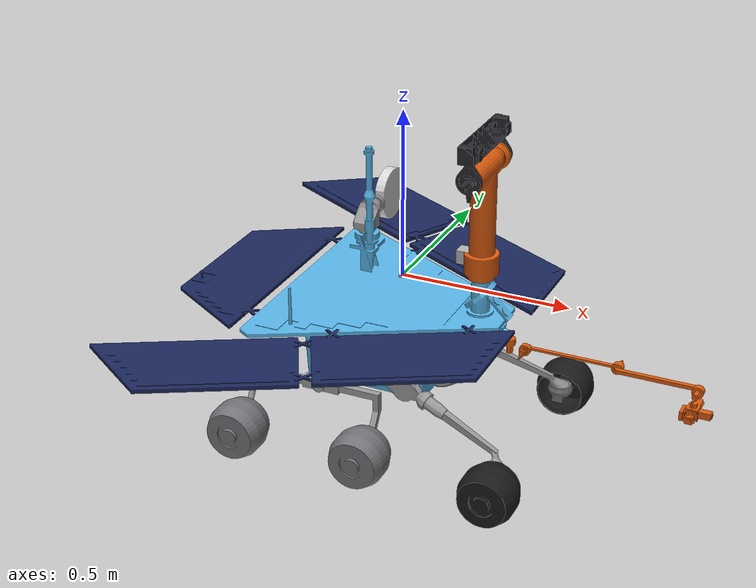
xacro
<robot name="mars_opportunity_rover">

  <material name="chassis_grey">
    <color rgba="0.55 0.55 0.58 1.0"/>
  </material>
  <material name="wheel_black">
    <color rgba="0.08 0.08 0.08 1.0"/>
  </material>
  <material name="arm_orange">
    <color rgba="0.85 0.35 0.05 1.0"/>
  </material>
  <material name="mast_silver">
    <color rgba="0.75 0.75 0.78 1.0"/>
  </material>
  <material name="sensor_dark">
    <color rgba="0.15 0.15 0.17 1.0"/>
  </material>
  <material name="lens_glass">
    <color rgba="0.1 0.15 0.2 0.6"/>
  </material>
  <material name="solar_panel_blue">
    <color rgba="0.1 0.15 0.35 1.0"/>
  </material>
  <material name="antenna_hg_white">
    <color rgba="0.85 0.85 0.85 1.0"/>
  </material>

  <!-- ===================== MATERIALS ===================== -->
  <!-- Original 3 -->
  <material name="grey"><color rgba="0.6 0.6 0.6 1.0"/></material>
  <material name="black"><color rgba="0.1 0.1 0.1 1.0"/></material>
  <material name="blue"><color rgba="0.1 0.1 0.8 1.0"/></material>

  <material name="arm_material"><color rgba="0.85 0.35 0.05 1.0"/></material>
  <material name="head_top_material"><color rgba="0.15 0.15 0.17 1.0"/></material>
  <material name="group_left_chassis_material"><color rgba="0.6 0.6 0.6 1.0"/></material>
  <material name="group_left_front_steering_material"><color rgba="0.45 0.45 0.47 1.0"/></material>
  <material name="group_left_wheel_material"><color rgba="0.1 0.1 0.1 1.0"/></material>
  <material name="left_bogie_material"><color rgba="0.6 0.6 0.6 1.0"/></material>
  <material name="group_left_middle_chariot_center_material"><color rgba="0.45 0.45 0.47 1.0"/></material>
  <material name="group_right_chassis_material"><color rgba="0.6 0.6 0.6 1.0"/></material>
  <material name="group_right_front_steering_material"><color rgba="0.45 0.45 0.47 1.0"/></material>
  <material name="group_right_wheel_material"><color rgba="0.1 0.1 0.1 1.0"/></material>
  <material name="right_bogie_material"><color rgba="0.6 0.6 0.6 1.0"/></material>
  <material name="group_right_middle_chariot_center_material"><color rgba="0.45 0.45 0.47 1.0"/></material>
  <material name="solar_panel_material"><color rgba="0.1 0.15 0.35 1.0"/></material>
  <material name="antenna_base_material"><color rgba="0.6 0.6 0.6 1.0"/></material>
  <material name="antenna_hg_material"><color rgba="0.85 0.85 0.85 1.0"/></material>

  <!-- Base Chassis with Mesh -->
  <link name="base_link"/>

  <joint name="base_to_body_box" type="fixed">
    <parent link="base_link"/>
    <child link="body_box_link"/>
    <origin xyz="0 0 0" rpy="0 0 0"/>
  </joint>

  <link name="body_box_link">
    <visual>
      <origin xyz="0 0 0" rpy="0 0 0"/>
      <geometry>
        <mesh filename="package://rover_description/meshes/body_box.stl" scale="0.68 0.68 0.68"/>
      </geometry>
    </visual>
    <collision>
      <origin xyz="0 0 0" rpy="0 0 0"/>
      <geometry><mesh filename="package://rover_description/meshes/body_box.stl"/></geometry>
    </collision>
    <inertial>
      <!-- Bounding-box approximation (mesh's real inertia depends on
           its actual shape, unknown until the mesh is supplied) -
           see common.xacro's box_inertia macro. -->
      <origin xyz="0 0 0"/>
      <mass value="14.0"/>
    <inertia ixx="0.18106666666666668" ixy="0.0" ixz="0.0" iyy="0.47833333333333333" iyz="0.0" izz="0.5996666666666667"/>

    </inertial>
  </link>

  <!-- Head with Mesh -->

  <joint name="head_j2_joint" type="revolute">
    <parent link="body_box_link"/>
    <child link="head_j2_link"/>
    <origin xyz="0.24 0 0" rpy="0 0 0"/>
    <axis xyz="0 0 1"/>
    <limit lower="-1.0" upper="1.0" effort="10" velocity="1.0"/>
  </joint>

  <transmission name="head_j2_transmission">
    <type>transmission_interface/SimpleTransmission</type>
    <joint name="head_j2_joint">
      <hardwareInterface>hardware_interface/PositionJointInterface</hardwareInterface>
    </joint>
    <actuator name="head_j2_motor">
      <hardwareInterface>hardware_interface/PositionJointInterface</hardwareInterface>
      <mechanicalReduction>1</mechanicalReduction>
    </actuator>
  </transmission>

  <link name="head_j2_link">
    <visual>
      <origin xyz="-0.24 0 0" rpy="0 0 0"/>
      <geometry>
        <mesh filename="package://rover_description/meshes/head_j2.stl" scale="0.68 0.68 0.68"/>
      </geometry>
      <material name="arm_material"/>
    </visual>
    <collision>
      <origin xyz="0 0 0" rpy="0 0 0"/>
      <geometry><mesh filename="package://rover_description/meshes/head_j2.stl"/></geometry>
    </collision>
    <inertial>
      <mass value="0.3"/>
    <inertia ixx="0.00032" ixy="0.0" ixz="0.0" iyy="0.00032" iyz="0.0" izz="0.00032"/>

    </inertial>
  </link>

  <joint name="head_j3_joint" type="revolute">
    <parent link="head_j2_link"/>
    <child link="head_j3_link"/>
    <origin xyz="0 0 0.37" rpy="0 0 0"/>
    <axis xyz="0 1 0"/>
    <limit lower="-1.0" upper="1.0" effort="4" velocity="1.0"/>
  </joint>

  <transmission name="head_j3_transmission">
    <type>transmission_interface/SimpleTransmission</type>
    <joint name="head_j3_joint">
      <hardwareInterface>hardware_interface/PositionJointInterface</hardwareInterface>
    </joint>
    <actuator name="head_j3_motor">
      <hardwareInterface>hardware_interface/PositionJointInterface</hardwareInterface>
      <mechanicalReduction>1</mechanicalReduction>
    </actuator>
  </transmission>

  <link name="head_j3_link">
    <visual>
      <origin xyz="-0.24 0 -0.37" rpy="0 0 0"/>
      <geometry>
        <mesh filename="package://rover_description/meshes/head_j3.stl" scale="0.68 0.68 0.68"/>
      </geometry>
      <material name="head_top_material"/>
    </visual>
    <collision>
      <origin xyz="0 0 0" rpy="0 0 0"/>
      <geometry><mesh filename="package://rover_description/meshes/head_j3.stl"/></geometry>
    </collision>
    <inertial>
      <mass value="0.2"/>
    <inertia ixx="0.00012" ixy="0.0" ixz="0.0" iyy="0.00012" iyz="0.0" izz="0.00012"/>

    </inertial>
  </link>

  <!-- Group Differential Steering Wheels Left with Mesh -->

  <joint name="left_differential_joint" type="revolute">
    <parent link="body_box_link"/>
    <child link="left_differential_link"/>
    <origin xyz="0.09 0 -0.265" rpy="0 0 0"/>
    <axis xyz="0 1 0"/>
    <limit lower="-0.2" upper="0.2" effort="10" velocity="1.0"/>
  </joint>

  <link name="left_differential_link">
    <visual>
      <origin xyz="-0.09 0 0.265" rpy="0 0 0"/>
      <geometry>
        <mesh filename="package://rover_description/meshes/left_differential.stl" scale="0.68 0.68 0.68"/>
      </geometry>
      <material name="group_left_chassis_material"/>
    </visual>
    <collision>
      <origin xyz="0 0 0" rpy="0 0 0"/>
      <geometry><mesh filename="package://rover_description/meshes/left_differential.stl"/></geometry>
    </collision>
    <inertial>
      <mass value="0.5"/>
    <inertia ixx="0.0008333333333333335" ixy="0.0" ixz="0.0" iyy="0.0008333333333333335" iyz="0.0" izz="0.0008333333333333335"/>

    </inertial>
  </link>

  <joint name="front_left_steering_joint" type="revolute">
    <parent link="left_differential_link"/>
    <child link="front_left_steering_link"/>
    <origin xyz="0.315 0.26 -0.14" rpy="0 0 0"/>
    <axis xyz="0 0 1"/>
    <limit lower="-0.3" upper="0.3" effort="10" velocity="1.0"/>
  </joint>

  <transmission name="front_left_steering_transmission">
    <type>transmission_interface/SimpleTransmission</type>
    <joint name="front_left_steering_joint">
      <hardwareInterface>hardware_interface/PositionJointInterface</hardwareInterface>
    </joint>
    <actuator name="front_left_steering_motor">
      <hardwareInterface>hardware_interface/PositionJointInterface</hardwareInterface>
      <mechanicalReduction>1</mechanicalReduction>
    </actuator>
  </transmission>

  <link name="front_left_steering_link">
    <visual>
      <origin xyz="-0.402 -0.258 0.404" rpy="0 0 0"/>
      <geometry>
        <mesh filename="package://rover_description/meshes/front_left_steering.stl" scale="0.68 0.68 0.68"/>
      </geometry>
      <material name="group_left_front_steering_material"/>
    </visual>
    <collision>
      <origin xyz="0 0 0" rpy="0 0 0"/>
      <geometry><mesh filename="package://rover_description/meshes/front_left_steering.stl"/></geometry>
    </collision>
    <inertial>
      <mass value="0.3"/>
    <inertia ixx="0.00018" ixy="0.0" ixz="0.0" iyy="0.00018" iyz="0.0" izz="0.00018"/>

    </inertial>
  </link>

  <joint name="front_left_wheel_joint" type="continuous">
    <parent link="front_left_steering_link"/>
    <child link="front_left_wheel_link"/>
    <origin xyz="0 0.045 -0.033" rpy="0 0 0"/>
    <axis xyz="0 1 0"/>
  </joint>

  <transmission name="front_left_wheel_transmission">
    <type>transmission_interface/SimpleTransmission</type>
    <joint name="front_left_wheel_joint">
      <hardwareInterface>hardware_interface/PositionJointInterface</hardwareInterface>
    </joint>
    <actuator name="front_left_wheel_motor">
      <hardwareInterface>hardware_interface/PositionJointInterface</hardwareInterface>
      <mechanicalReduction>1</mechanicalReduction>
    </actuator>
  </transmission>

  <link name="front_left_wheel_link">
    <visual>
      <origin xyz="-0.409 -0.3 0.433" rpy="0 0 0"/>
      <geometry>
        <mesh filename="package://rover_description/meshes/front_left_wheel.stl" scale="0.68 0.68 0.68"/>
      </geometry>
      <material name="group_left_wheel_material"/>
    </visual>
    <collision>
      <origin xyz="0 0 0" rpy="0 0 0"/>
      <geometry><mesh filename="package://rover_description/meshes/front_left_wheel.stl"/></geometry>
    </collision>
    <inertial>
      <mass value="1.1"/>
    <inertia ixx="0.0025575000000000003" ixy="0.0" ixz="0.0" iyy="0.0025575000000000003" iyz="0.0" izz="0.004455"/>

    </inertial>
  </link>

  <joint name="left_bogie_joint" type="revolute">
    <parent link="left_differential_link"/>
    <child link="left_bogie_link"/>
    <origin xyz="-0.265 0.195 -0.041" rpy="0 0 0"/>
    <axis xyz="0 1 0"/>
    <limit lower="-0.3" upper="0.3" effort="10" velocity="1.0"/>
  </joint>

  <transmission name="left_bogie_transmission">
    <type>transmission_interface/SimpleTransmission</type>
    <joint name="left_bogie_joint">
      <hardwareInterface>hardware_interface/PositionJointInterface</hardwareInterface>
    </joint>
    <actuator name="left_bogie_motor">
      <hardwareInterface>hardware_interface/PositionJointInterface</hardwareInterface>
      <mechanicalReduction>1</mechanicalReduction>
    </actuator>
  </transmission>

  <link name="left_bogie_link">
    <visual>
      <origin xyz="0.175 -0.190 0.308" rpy="0 0 0"/>
      <geometry>
        <mesh filename="package://rover_description/meshes/left_bogie.stl" scale="0.68 0.68 0.68"/>
      </geometry>
      <material name="left_bogie_material"/>
    </visual>
    <collision>
      <origin xyz="0 0 0" rpy="0 0 0"/>
      <geometry><mesh filename="package://rover_description/meshes/left_bogie.stl"/></geometry>
    </collision>
    <inertial>
      <mass value="0.6"/>
    <inertia ixx="0.00064" ixy="0.0" ixz="0.0" iyy="0.0014449999999999999" iyz="0.0" izz="0.0014449999999999999"/>

    </inertial>
  </link>

  <joint name="middle_left_wheel_joint" type="continuous">
    <parent link="left_bogie_link"/>
    <child link="middle_left_wheel_link"/>
    <origin xyz="0.178 0.06 -0.13" rpy="0 0 0"/>
    <axis xyz="0 1 0"/>
  </joint>

  <transmission name="middle_left_wheel_transmission">
    <type>transmission_interface/SimpleTransmission</type>
    <joint name="middle_left_wheel_joint">
      <hardwareInterface>hardware_interface/PositionJointInterface</hardwareInterface>
    </joint>
    <actuator name="middle_left_wheel_motor">
      <hardwareInterface>hardware_interface/PositionJointInterface</hardwareInterface>
      <mechanicalReduction>1</mechanicalReduction>
    </actuator>
  </transmission>

  <link name="middle_left_wheel_link">
    <visual>
      <origin xyz="0 -0.22 0.435" rpy="0 0 0"/>
      <geometry>
        <mesh filename="package://rover_description/meshes/middle_left_wheel.stl" scale="0.68 0.68 0.68"/>
      </geometry>
      <material name="group_left_middle_chariot_center_material"/>
    </visual>
    <collision>
      <origin xyz="0 0 0" rpy="0 0 0"/>
      <geometry><mesh filename="package://rover_description/meshes/middle_left_wheel.stl"/></geometry>
    </collision>
    <inertial>
      <mass value="1.1"/>
    <inertia ixx="0.0025575000000000003" ixy="0.0" ixz="0.0" iyy="0.0025575000000000003" iyz="0.0" izz="0.004455"/>

    </inertial>
  </link>

  <joint name="rear_left_steering_joint" type="revolute">
    <parent link="left_bogie_link"/>
    <child link="rear_left_steering_link"/>
    <origin xyz="-0.203 0.09 -0.1" rpy="0 0 0"/>
    <axis xyz="0 0 1"/>
    <limit lower="-0.3" upper="0.3" effort="10" velocity="1.0"/>
  </joint>

  <transmission name="rear_left_steering_transmission">
    <type>transmission_interface/SimpleTransmission</type>
    <joint name="rear_left_steering_joint">
      <hardwareInterface>hardware_interface/PositionJointInterface</hardwareInterface>
    </joint>
    <actuator name="rear_left_steering_motor">
      <hardwareInterface>hardware_interface/PositionJointInterface</hardwareInterface>
      <mechanicalReduction>1</mechanicalReduction>
    </actuator>
  </transmission>

  <link name="rear_left_steering_link">
    <visual>
      <origin xyz="0.38 -0.28 0.408" rpy="0 0 0"/>
      <geometry>
        <mesh filename="package://rover_description/meshes/rear_left_steering.stl" scale="0.68 0.68 0.68"/>
      </geometry>
      <material name="group_left_middle_chariot_center_material"/>
    </visual>
    <collision>
      <origin xyz="0 0 0" rpy="0 0 0"/>
      <geometry><mesh filename="package://rover_description/meshes/rear_left_steering.stl"/></geometry>
    </collision>
    <inertial>
      <mass value="0.3"/>
    <inertia ixx="0.00018" ixy="0.0" ixz="0.0" iyy="0.00018" iyz="0.0" izz="0.00018"/>

    </inertial>
  </link>

  <joint name="rear_left_wheel_joint" type="continuous">
    <parent link="rear_left_steering_link"/>
    <child link="rear_left_wheel_link"/>
    <origin xyz="0 0.048 -0.025" rpy="0 0 0"/>
    <axis xyz="0 1 0"/>
  </joint>

  <transmission name="rear_left_wheel_transmission">
    <type>transmission_interface/SimpleTransmission</type>
    <joint name="rear_left_wheel_joint">
      <hardwareInterface>hardware_interface/PositionJointInterface</hardwareInterface>
    </joint>
    <actuator name="rear_left_wheel_motor">
      <hardwareInterface>hardware_interface/PositionJointInterface</hardwareInterface>
      <mechanicalReduction>1</mechanicalReduction>
    </actuator>
  </transmission>

  <link name="rear_left_wheel_link">
    <visual>
      <origin xyz="0.38 -0.32 0.44" rpy="0 0 0"/>
      <geometry>
        <mesh filename="package://rover_description/meshes/rear_left_wheel.stl" scale="0.68 0.68 0.68"/>
      </geometry>
      <material name="group_left_middle_chariot_center_material"/>
    </visual>
    <collision>
      <origin xyz="0 0 0" rpy="0 0 0"/>
      <geometry><mesh filename="package://rover_description/meshes/rear_left_wheel.stl"/></geometry>
    </collision>
    <inertial>
      <mass value="1.1"/>
    <inertia ixx="0.0025575000000000003" ixy="0.0" ixz="0.0" iyy="0.0025575000000000003" iyz="0.0" izz="0.004455"/>

    </inertial>
  </link>

  <!-- Group Differential Steering Wheels Right with Mesh -->

  <joint name="right_differential_joint" type="revolute">
    <parent link="body_box_link"/>
    <child link="right_differential_link"/>
    <origin xyz="0.09 0 -0.265" rpy="0 0 0"/>
    <axis xyz="0 1 0"/>
    <limit lower="-0.2" upper="0.2" effort="10" velocity="1.0"/>
  </joint>

  <transmission name="right_differential_transmission">
    <type>transmission_interface/SimpleTransmission</type>
    <joint name="right_differential_joint">
      <hardwareInterface>hardware_interface/PositionJointInterface</hardwareInterface>
    </joint>
    <actuator name="right_differential_motor">
      <hardwareInterface>hardware_interface/PositionJointInterface</hardwareInterface>
      <mechanicalReduction>1</mechanicalReduction>
    </actuator>
  </transmission>

  <link name="right_differential_link">
    <visual>
      <origin xyz="-0.09 0 0.265" rpy="0 0 0"/>
      <geometry>
        <mesh filename="package://rover_description/meshes/right_differential.stl" scale="0.68 0.68 0.68"/>
      </geometry>
      <material name="group_right_chassis_material"/>
    </visual>
    <collision>
      <origin xyz="0 0 0" rpy="0 0 0"/>
      <geometry><mesh filename="package://rover_description/meshes/right_differential.stl"/></geometry>
    </collision>
    <inertial>
      <mass value="0.5"/>
    <inertia ixx="0.0008333333333333335" ixy="0.0" ixz="0.0" iyy="0.0008333333333333335" iyz="0.0" izz="0.0008333333333333335"/>

    </inertial>
  </link>

  <joint name="front_right_steering_joint" type="revolute">
    <parent link="right_differential_link"/>
    <child link="front_right_steering_link"/>
    <origin xyz="0.315 -0.26 -0.14" rpy="0 0 0"/>
    <axis xyz="0 0 1"/>
    <limit lower="-0.3" upper="0.3" effort="10" velocity="1.0"/>
  </joint>

  <transmission name="front_right_steering_transmission">
    <type>transmission_interface/SimpleTransmission</type>
    <joint name="front_right_steering_joint">
      <hardwareInterface>hardware_interface/PositionJointInterface</hardwareInterface>
    </joint>
    <actuator name="front_right_steering_motor">
      <hardwareInterface>hardware_interface/PositionJointInterface</hardwareInterface>
      <mechanicalReduction>1</mechanicalReduction>
    </actuator>
  </transmission>

  <link name="front_right_steering_link">
    <visual>
      <origin xyz="-0.402 0.258 0.404" rpy="0 0 0"/>
      <geometry>
        <mesh filename="package://rover_description/meshes/front_right_steering.stl" scale="0.68 0.68 0.68"/>
      </geometry>
      <material name="group_right_front_steering_material"/>
    </visual>
    <collision>
      <origin xyz="0 0 0" rpy="0 0 0"/>
      <geometry><mesh filename="package://rover_description/meshes/front_right_steering.stl"/></geometry>
    </collision>
    <inertial>
      <mass value="0.3"/>
    <inertia ixx="0.00018" ixy="0.0" ixz="0.0" iyy="0.00018" iyz="0.0" izz="0.00018"/>

    </inertial>
  </link>

  <joint name="front_right_wheel_joint" type="continuous">
    <parent link="front_right_steering_link"/>
    <child link="front_right_wheel_link"/>
    <origin xyz="0 -0.045 -0.033" rpy="0 0 0"/>
    <axis xyz="0 1 0"/>
  </joint>

  <transmission name="front_right_wheel_transmission">
    <type>transmission_interface/SimpleTransmission</type>
    <joint name="front_right_wheel_joint">
      <hardwareInterface>hardware_interface/PositionJointInterface</hardwareInterface>
    </joint>
    <actuator name="front_right_wheel_motor">
      <hardwareInterface>hardware_interface/PositionJointInterface</hardwareInterface>
      <mechanicalReduction>1</mechanicalReduction>
    </actuator>
  </transmission>

  <link name="front_right_wheel_link">
    <visual>
      <origin xyz="-0.409 0.3 0.433" rpy="0 0 0"/>
      <geometry>
        <mesh filename="package://rover_description/meshes/front_right_wheel.stl" scale="0.68 0.68 0.68"/>
      </geometry>
      <material name="group_right_wheel_material"/>
    </visual>
    <collision>
      <origin xyz="0 0 0" rpy="0 0 0"/>
      <geometry><mesh filename="package://rover_description/meshes/front_right_wheel.stl"/></geometry>
    </collision>
    <inertial>
      <mass value="1.1"/>
    <inertia ixx="0.0025575000000000003" ixy="0.0" ixz="0.0" iyy="0.0025575000000000003" iyz="0.0" izz="0.004455"/>

    </inertial>
  </link>

  <joint name="right_bogie_joint" type="revolute">
    <parent link="right_differential_link"/>
    <child link="right_bogie_link"/>
    <origin xyz="-0.265 -0.195 -0.041" rpy="0 0 0"/>
    <axis xyz="0 1 0"/>
    <limit lower="-0.3" upper="0.3" effort="10" velocity="1.0"/>
  </joint>

  <transmission name="right_bogie_transmission">
    <type>transmission_interface/SimpleTransmission</type>
    <joint name="right_bogie_joint">
      <hardwareInterface>hardware_interface/PositionJointInterface</hardwareInterface>
    </joint>
    <actuator name="right_bogie_motor">
      <hardwareInterface>hardware_interface/PositionJointInterface</hardwareInterface>
      <mechanicalReduction>1</mechanicalReduction>
    </actuator>
  </transmission>

  <link name="right_bogie_link">
    <visual>
      <origin xyz="0.175 0.190 0.308" rpy="0 0 0"/>
      <geometry>
        <mesh filename="package://rover_description/meshes/right_bogie.stl" scale="0.68 0.68 0.68"/>
      </geometry>
      <material name="right_bogie_material"/>
    </visual>
    <collision>
      <origin xyz="0 0 0" rpy="0 0 0"/>
      <geometry><mesh filename="package://rover_description/meshes/right_bogie.stl"/></geometry>
    </collision>
    <inertial>
      <mass value="0.6"/>
    <inertia ixx="0.00064" ixy="0.0" ixz="0.0" iyy="0.0014449999999999999" iyz="0.0" izz="0.0014449999999999999"/>

    </inertial>
  </link>

  <joint name="middle_right_wheel_joint" type="continuous">
    <parent link="right_bogie_link"/>
    <child link="middle_right_wheel_link"/>
    <origin xyz="0.178 -0.06 -0.13" rpy="0 0 0"/>
    <axis xyz="0 1 0"/>
  </joint>

  <transmission name="middle_right_wheel_transmission">
    <type>transmission_interface/SimpleTransmission</type>
    <joint name="middle_right_wheel_joint">
      <hardwareInterface>hardware_interface/PositionJointInterface</hardwareInterface>
    </joint>
    <actuator name="middle_right_wheel_motor">
      <hardwareInterface>hardware_interface/PositionJointInterface</hardwareInterface>
      <mechanicalReduction>1</mechanicalReduction>
    </actuator>
  </transmission>

  <link name="middle_right_wheel_link">
    <visual>
      <origin xyz="0 0.22 0.435" rpy="0 0 0"/>
      <geometry>
        <mesh filename="package://rover_description/meshes/middle_right_wheel.stl" scale="0.68 0.68 0.68"/>
      </geometry>
      <material name="group_right_middle_chariot_center_material"/>
    </visual>
    <collision>
      <origin xyz="0 0 0" rpy="0 0 0"/>
      <geometry><mesh filename="package://rover_description/meshes/middle_right_wheel.stl"/></geometry>
    </collision>
    <inertial>
      <mass value="1.1"/>
    <inertia ixx="0.0025575000000000003" ixy="0.0" ixz="0.0" iyy="0.0025575000000000003" iyz="0.0" izz="0.004455"/>

    </inertial>
  </link>

  <joint name="rear_right_steering_joint" type="revolute">
    <parent link="right_bogie_link"/>
    <child link="rear_right_steering_link"/>
    <origin xyz="-0.203 -0.09 -0.1" rpy="0 0 0"/>
    <axis xyz="0 0 1"/>
    <limit lower="-0.3" upper="0.3" effort="10" velocity="1.0"/>
  </joint>

  <transmission name="rear_right_steering_transmission">
    <type>transmission_interface/SimpleTransmission</type>
    <joint name="rear_right_steering_joint">
      <hardwareInterface>hardware_interface/PositionJointInterface</hardwareInterface>
    </joint>
    <actuator name="rear_right_steering_motor">
      <hardwareInterface>hardware_interface/PositionJointInterface</hardwareInterface>
      <mechanicalReduction>1</mechanicalReduction>
    </actuator>
  </transmission>

  <link name="rear_right_steering_link">
    <visual>
      <origin xyz="0.38 0.28 0.408" rpy="0 0 0"/>
      <geometry>
        <mesh filename="package://rover_description/meshes/rear_right_steering.stl" scale="0.68 0.68 0.68"/>
      </geometry>
      <material name="group_right_middle_chariot_center_material"/>
    </visual>
    <collision>
      <origin xyz="0 0 0" rpy="0 0 0"/>
      <geometry><mesh filename="package://rover_description/meshes/rear_right_steering.stl"/></geometry>
    </collision>
    <inertial>
      <mass value="0.3"/>
    <inertia ixx="0.00018" ixy="0.0" ixz="0.0" iyy="0.00018" iyz="0.0" izz="0.00018"/>

    </inertial>
  </link>

  <joint name="rear_right_wheel_joint" type="continuous">
    <parent link="rear_right_steering_link"/>
    <child link="rear_right_wheel_link"/>
    <origin xyz="0 -0.048 -0.025" rpy="0 0 0"/>
    <axis xyz="0 1 0"/>
  </joint>

  <transmission name="rear_right_wheel_transmission">
    <type>transmission_interface/SimpleTransmission</type>
    <joint name="rear_right_wheel_joint">
      <hardwareInterface>hardware_interface/PositionJointInterface</hardwareInterface>
    </joint>
    <actuator name="rear_right_wheel_motor">
      <hardwareInterface>hardware_interface/PositionJointInterface</hardwareInterface>
      <mechanicalReduction>1</mechanicalReduction>
    </actuator>
  </transmission>

  <link name="rear_right_wheel_link">
    <visual>
      <origin xyz="0.38 0.32 0.44" rpy="0 0 0"/>
      <geometry>
        <mesh filename="package://rover_description/meshes/rear_right_wheel.stl" scale="0.68 0.68 0.68"/>
      </geometry>
      <material name="group_right_middle_chariot_center_material"/>
    </visual>
    <collision>
      <origin xyz="0 0 0" rpy="0 0 0"/>
      <geometry><mesh filename="package://rover_description/meshes/rear_right_wheel.stl"/></geometry>
    </collision>
    <inertial>
      <mass value="1.1"/>
    <inertia ixx="0.0025575000000000003" ixy="0.0" ixz="0.0" iyy="0.0025575000000000003" iyz="0.0" izz="0.004455"/>

    </inertial>
  </link>

  <!-- Arm link with Meshes -->

  <joint name="arm_j1_joint" type="revolute">
    <parent link="body_box_link"/>
    <child link="arm_j1_link"/>
    <origin xyz="0.3 0.09 -0.2" rpy="0 0 0"/>
    <axis xyz="0 0 1"/>
    <limit lower="-1.0" upper="1.0" effort="8" velocity="1.5"/>
  </joint>

  <link name="arm_j1_link">
    <visual>
      <origin xyz="-0.285 -0.095 0.2" rpy="0 0 0"/>
      <geometry>
        <mesh filename="package://rover_description/meshes/arm_j1.stl" scale="0.68 0.68 0.68"/>
      </geometry>
      <material name="arm_material"/>
    </visual>
    <collision>
      <origin xyz="0 0 0" rpy="0 0 0"/>
      <geometry><mesh filename="package://rover_description/meshes/arm_j1.stl"/></geometry>
    </collision>
    <inertial>
      <mass value="0.4"/>
    <inertia ixx="0.0004266666666666667" ixy="0.0" ixz="0.0" iyy="0.0004266666666666667" iyz="0.0" izz="0.0004266666666666667"/>

    </inertial>
  </link>

  <joint name="arm_j2_joint" type="revolute">
    <parent link="arm_j1_link"/>
    <child link="arm_j2_link"/>
    <origin xyz="0.05 0 -0.005" rpy="0 0 0"/>
    <axis xyz="0 1 0"/>
    <limit lower="-0.5" upper="1.0" effort="10" velocity="1.0"/>
  </joint>

  <link name="arm_j2_link">
    <visual>
      <origin xyz="-0.32 -0.095 0.205" rpy="0 0 0"/>
      <geometry>
        <mesh filename="package://rover_description/meshes/arm_j2.stl" scale="0.68 0.68 0.68"/>
      </geometry>
      <material name="arm_material"/>
    </visual>
    <collision>
      <origin xyz="0 0 0" rpy="0 0 0"/>
      <geometry><mesh filename="package://rover_description/meshes/arm_j2.stl"/></geometry>
    </collision>
    <inertial>
      <mass value="0.5"/>
    <inertia ixx="0.002129166666666667" ixy="0.0" ixz="0.0" iyy="0.002129166666666667" iyz="0.0" izz="0.000225"/>

    </inertial>
  </link>

  <joint name="arm_j3_joint" type="revolute">
    <parent link="arm_j2_link"/>
    <child link="arm_j3_link"/>
    <origin xyz="0.275 0 0" rpy="0 0 0"/>
    <axis xyz="0 1 0"/>
    <limit lower="-1.57" upper="1.57" effort="10" velocity="1.0"/>
  </joint>

  <link name="arm_j3_link">
    <visual>
      <origin xyz="-0.575 -0.1 0.205" rpy="0 0 0"/>
      <geometry>
        <mesh filename="package://rover_description/meshes/arm_j3.stl" scale="0.68 0.68 0.68"/>
      </geometry>
      <material name="arm_material"/>
    </visual>
    <collision>
      <origin xyz="0 0 0" rpy="0 0 0"/>
      <geometry><mesh filename="package://rover_description/meshes/arm_j3.stl"/></geometry>
    </collision>
    <inertial>
      <mass value="0.4"/>
    <inertia ixx="0.0013958333333333338" ixy="0.0" ixz="0.0" iyy="0.0013958333333333338" iyz="0.0" izz="0.00012500000000000003"/>

    </inertial>
  </link>

  <joint name="arm_j4_joint" type="revolute">
    <parent link="arm_j3_link"/>
    <child link="arm_j4_link"/>
    <origin xyz="0.235 -0.021 0" rpy="0 0 0"/>
    <axis xyz="0 1 0"/>
    <limit lower="-1.57" upper="1.57" effort="4" velocity="1.5"/>
  </joint>

  <link name="arm_j4_link">
    <visual>
      <origin xyz="-0.8 -0.08 0.205" rpy="0 0 0"/>
      <geometry>
        <mesh filename="package://rover_description/meshes/arm_j4.stl" scale="0.68 0.68 0.68"/>
      </geometry>
      <material name="arm_material"/>
    </visual>
    <collision>
      <origin xyz="0 0 0" rpy="0 0 0"/>
      <geometry><mesh filename="package://rover_description/meshes/arm_j4.stl"/></geometry>
    </collision>
    <inertial>
      <mass value="0.25"/>
    <inertia ixx="0.00019375" ixy="0.0" ixz="0.0" iyy="0.00019375" iyz="0.0" izz="0.00005"/>

    </inertial>
  </link>

  <joint name="arm_j5_joint" type="revolute">
    <parent link="arm_j4_link"/>
    <child link="arm_j5_link"/>
    <origin xyz="0 -0.06 0" rpy="0 0 0"/>
    <axis xyz="0 0 1"/>
    <limit lower="-1.57" upper="1.57" effort="3" velocity="2.0"/>
  </joint>

  <link name="arm_j5_link">
    <visual>
      <origin xyz="-0.8 0 0.205" rpy="0 0 0"/>
      <geometry>
        <mesh filename="package://rover_description/meshes/arm_j5.stl" scale="0.68 0.68 0.68"/>
      </geometry>
      <material name="arm_material"/>
    </visual>
    <collision>
      <origin xyz="0 0 0" rpy="0 0 0"/>
      <geometry><mesh filename="package://rover_description/meshes/arm_j5.stl"/></geometry>
    </collision>
    <inertial>
      <mass value="0.15"/>
    <inertia ixx="0.00007340000000000001" ixy="0.0" ixz="0.0" iyy="0.00007340000000000001" iyz="0.0" izz="0.000024299999999999994"/>

    </inertial>
  </link>

  <transmission name="arm_j1_trans">
    <type>transmission_interface/SimpleTransmission</type>
    <joint name="arm_j1_joint"/>
    <actuator name="arm_j1_motor"/>
  </transmission>

  <transmission name="arm_j2_trans">
    <type>transmission_interface/SimpleTransmission</type>
    <joint name="arm_j2_joint"/>
    <actuator name="arm_j2_motor"/>
  </transmission>

  <transmission name="arm_j3_trans">
    <type>transmission_interface/SimpleTransmission</type>
    <joint name="arm_j3_joint"/>
    <actuator name="arm_j3_motor"/>
  </transmission>

  <transmission name="arm_j4_trans">
    <type>transmission_interface/SimpleTransmission</type>
    <joint name="arm_j4_joint"/>
    <actuator name="arm_j4_motor"/>
  </transmission>

  <transmission name="arm_j5_trans">
    <type>transmission_interface/SimpleTransmission</type>
    <joint name="arm_j5_joint"/>
    <actuator name="arm_j5_motor"/>
  </transmission>

  <!-- Solar Panels (static - not deployable/steerable) -->

  <joint name="front_left_panel_joint" type="fixed">
    <parent link="body_box_link"/>
    <child link="front_left_panel_link"/>
    <origin xyz="0.12 0.20 0.08" rpy="0 0 0"/>
  </joint>

  <link name="front_left_panel_link">
    <visual>
      <origin xyz="-0.1 -0.2 -0.08" rpy="0 0 0"/>
      <geometry>
        <mesh filename="package://rover_description/meshes/front_left_panel.stl" scale="0.68 0.68 0.68"/>
      </geometry>
      <material name="solar_panel_material"/>
    </visual>
    <collision>
      <origin xyz="0 0 0" rpy="0 0 0"/>
      <geometry><mesh filename="package://rover_description/meshes/front_left_panel.stl"/></geometry>
    </collision>
    <inertial>
      <mass value="0.3"/>
    <inertia ixx="0.0004916000000000001" ixy="0.0" ixz="0.0" iyy="0.0012116" iyz="0.0" izz="0.0017000000000000001"/>

    </inertial>
  </link>

  <joint name="rear_left_panel_joint" type="fixed">
    <parent link="body_box_link"/>
    <child link="rear_left_panel_link"/>
    <origin xyz="-0.12 0.20 0.08" rpy="0 0 0"/>
  </joint>

  <link name="rear_left_panel_link">
    <visual>
      <origin xyz="0.128 -0.190 -0.0775" rpy="0 0 0"/>
      <geometry>
        <mesh filename="package://rover_description/meshes/rear_left_panel.stl" scale="0.68 0.68 0.68"/>
      </geometry>
      <material name="solar_panel_material"/>
    </visual>
    <collision>
      <origin xyz="0 0 0" rpy="0 0 0"/>
      <geometry><mesh filename="package://rover_description/meshes/rear_left_panel.stl"/></geometry>
    </collision>
    <inertial>
      <mass value="0.3"/>
    <inertia ixx="0.0004916000000000001" ixy="0.0" ixz="0.0" iyy="0.0012116" iyz="0.0" izz="0.0017000000000000001"/>

    </inertial>
  </link>

  <joint name="front_right_panel_joint" type="fixed">
    <parent link="body_box_link"/>
    <child link="front_right_panel_link"/>
    <origin xyz="0.12 -0.20 0.08" rpy="0 0 0"/>
  </joint>

  <link name="front_right_panel_link">
    <visual>
      <origin xyz="-0.1 0.2 -0.075" rpy="0 0 0"/>
      <geometry>
        <mesh filename="package://rover_description/meshes/front_right_panel.stl" scale="0.68 0.68 0.68"/>
      </geometry>
      <material name="solar_panel_material"/>
    </visual>
    <collision>
      <origin xyz="0 0 0" rpy="0 0 0"/>
      <geometry><mesh filename="package://rover_description/meshes/front_right_panel.stl"/></geometry>
    </collision>
    <inertial>
      <mass value="0.3"/>
    <inertia ixx="0.0004916000000000001" ixy="0.0" ixz="0.0" iyy="0.0012116" iyz="0.0" izz="0.0017000000000000001"/>

    </inertial>
  </link>

  <joint name="rear_right_panel_joint" type="fixed">
    <parent link="body_box_link"/>
    <child link="rear_right_panel_link"/>
    <origin xyz="-0.12 -0.20 0.08" rpy="0 0 0"/>
  </joint>

  <link name="rear_right_panel_link">
    <visual>
      <origin xyz="0.128 0.190 -0.0775" rpy="0 0 0"/>
      <geometry>
        <mesh filename="package://rover_description/meshes/rear_right_panel.stl" scale="0.68 0.68 0.68"/>
      </geometry>
      <material name="solar_panel_material"/>
    </visual>
    <collision>
      <origin xyz="0 0 0" rpy="0 0 0"/>
      <geometry><mesh filename="package://rover_description/meshes/rear_right_panel.stl"/></geometry>
    </collision>
    <inertial>
      <mass value="0.3"/>
    <inertia ixx="0.0004916000000000001" ixy="0.0" ixz="0.0" iyy="0.0012116" iyz="0.0" izz="0.0017000000000000001"/>

    </inertial>
  </link>

  <joint name="rear_middle_panel_joint" type="fixed">
    <parent link="body_box_link"/>
    <child link="rear_middle_panel_link"/>
    <origin xyz="-0.22 0 0.08" rpy="0 0 0"/>
  </joint>

  <link name="rear_middle_panel_link">
    <visual>
      <origin xyz="0.2 0 -0.08" rpy="0 0 0"/>
      <geometry>
        <mesh filename="package://rover_description/meshes/rear_middle_panel.stl" scale="0.68 0.68 0.68"/>
      </geometry>
      <material name="solar_panel_material"/>
    </visual>
    <collision>
      <origin xyz="0 0 0" rpy="0 0 0"/>
      <geometry><mesh filename="package://rover_description/meshes/rear_middle_panel.stl"/></geometry>
    </collision>
    <inertial>
      <mass value="0.15"/>
    <inertia ixx="0.00018079999999999998" ixy="0.0" ixz="0.0" iyy="0.00024580000000000007" iyz="0.0" izz="0.00042500000000000003"/>

    </inertial>
  </link>

  <!-- Sensors and additional components -->

  <!-- Antenna High Gain -->
  <joint name="ant_j1_joint" type="revolute">
    <parent link="body_box_link"/>
    <child link="ant_j1_link"/>
    <origin xyz="-0.24 0.26 -0.02" rpy="0 0 0"/>
    <axis xyz="0 0 1"/>
    <limit lower="-0.5" upper="0.5" effort="1.0" velocity="1.0"/>
  </joint>

  <link name="ant_j1_link">
    <visual>
      <origin xyz="0.24 -0.26 0.02" rpy="0 0 0"/>
      <geometry>
        <mesh filename="package://rover_description/meshes/ant_j1.stl" scale="0.68 0.68 0.68"/>
      </geometry>
      <material name="antenna_base_material"/>
    </visual>
    <collision>
      <origin xyz="0 0 0" rpy="0 0 0"/>
      <geometry><mesh filename="package://rover_description/meshes/ant_j1.stl"/></geometry>
    </collision>
    <inertial>
      <mass value="0.15"/>
    <inertia ixx="0.000059999999999999995" ixy="0.0" ixz="0.0" iyy="0.000059999999999999995" iyz="0.0" izz="0.00003"/>

    </inertial>
  </link>

  <joint name="ant_j2_joint" type="revolute">
    <parent link="ant_j1_link"/>
    <child link="ant_j2_link"/>
    <origin xyz="0 0.082 0.061" rpy="0 0 0"/>
    <axis xyz="0 1 0"/>
    <limit lower="-0.5" upper="0.5" effort="0.5" velocity="1.0"/>
  </joint>

  <link name="ant_j2_link">
    <visual>
      <origin xyz="0.24 -0.34 -0.042" rpy="0 0 0"/>
      <geometry>
        <mesh filename="package://rover_description/meshes/ant_j2.stl" scale="0.68 0.68 0.68"/>
      </geometry>
      <material name="antenna_hg_material"/>
    </visual>
    <collision>
      <origin xyz="0 0 0" rpy="0 0 0"/>
      <geometry><mesh filename="package://rover_description/meshes/ant_j2.stl"/></geometry>
    </collision>
    <inertial>
      <mass value="0.1"/>
    <inertia ixx="0.00004333333333333333" ixy="0.0" ixz="0.0" iyy="0.00004333333333333333" iyz="0.0" izz="0.00008"/>

    </inertial>
  </link>

  <!-- IMU link (attached to base) -->
  <link name="imu_link">
    <visual><origin xyz="0 0 0"/><geometry><box size="0.02 0.02 0.01"/></geometry></visual>
    <inertial><mass value="0.02"/>
    <inertia ixx="8.333333333333334e-7" ixy="0.0" ixz="0.0" iyy="8.333333333333334e-7" iyz="0.0" izz="0.0000013333333333333336"/>
  </inertial>
  </link>

  <joint name="imu_joint" type="fixed">
    <parent link="body_box_link"/>
    <child link="imu_link"/>
    <origin xyz="0 0 0" rpy="0 0 0"/>
  </joint>

  <!-- Kinect RGB-D camera -->
  <link name="camera_link">
    <visual><origin xyz="0 0 0"/><geometry><box size="0.06 0.04 0.04"/></geometry></visual>
    <inertial><mass value="0.15"/>
    <inertia ixx="0.00004" ixy="0.0" ixz="0.0" iyy="0.000065" iyz="0.0" izz="0.000065"/>
  </inertial>
  </link>

  <joint name="camera_mount" type="fixed">
    <parent link="body_box_link"/>
    <child link="camera_link"/>
    <origin xyz="0.2 0 0.1" rpy="0 0 0"/>
  </joint>

  <!-- Gazebo plugins -->
  <gazebo>
    <plugin name="gazebo_ros_control" filename="libgazebo_ros_drive.so">
      <ros>
        <remapping>cmd_vel:=cmd_vel</remapping>
      </ros>
      <updateRate>50</updateRate>
      <leftJoint>front_left_wheel_joint middle_left_wheel_joint rear_left_wheel_joint</leftJoint>
      <rightJoint>front_right_wheel_joint middle_right_wheel_joint rear_right_wheel_joint</rightJoint>
    </plugin>
  </gazebo>

  <gazebo reference="front_left_wheel_link"><mu1>1.2</mu1><mu2>1.2</mu2></gazebo>
  <gazebo reference="front_right_wheel_link"><mu1>1.2</mu1><mu2>1.2</mu2></gazebo>
  <gazebo reference="middle_left_wheel_link"><mu1>1.2</mu1><mu2>1.2</mu2></gazebo>
  <gazebo reference="middle_right_wheel_link"><mu1>1.2</mu1><mu2>1.2</mu2></gazebo>
  <gazebo reference="rear_left_wheel_link"><mu1>1.2</mu1><mu2>1.2</mu2></gazebo>
  <gazebo reference="rear_right_wheel_link"><mu1>1.2</mu1><mu2>1.2</mu2></gazebo>

</robot>
